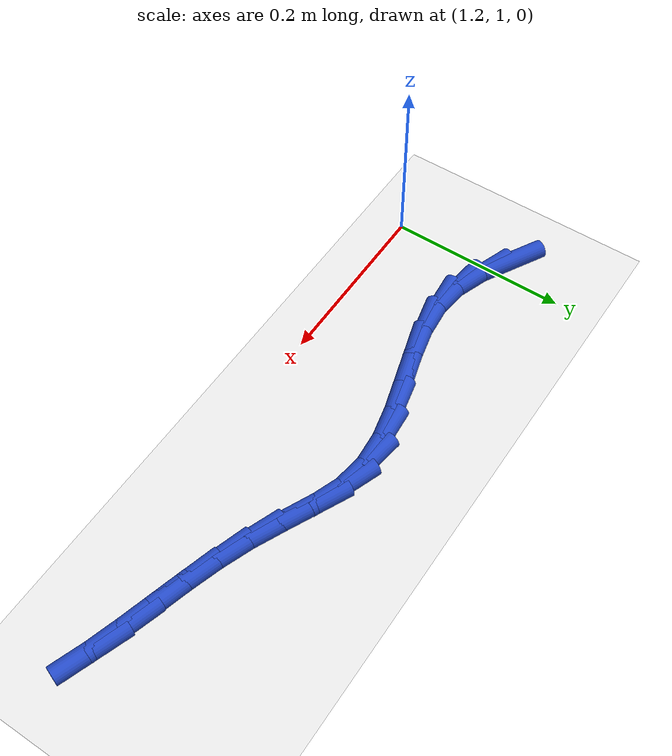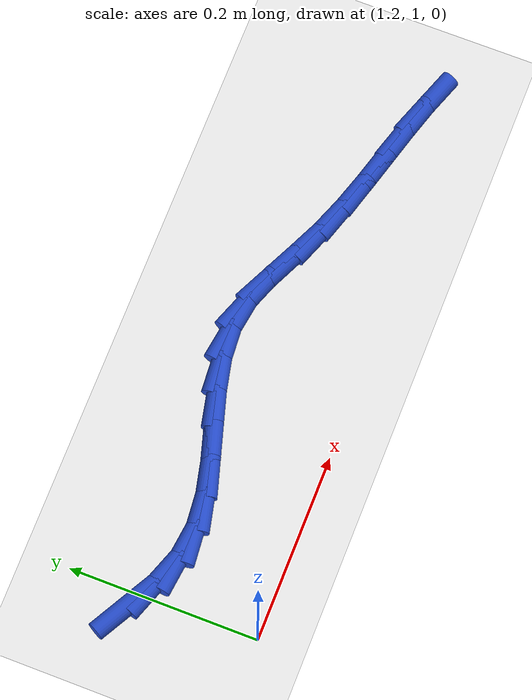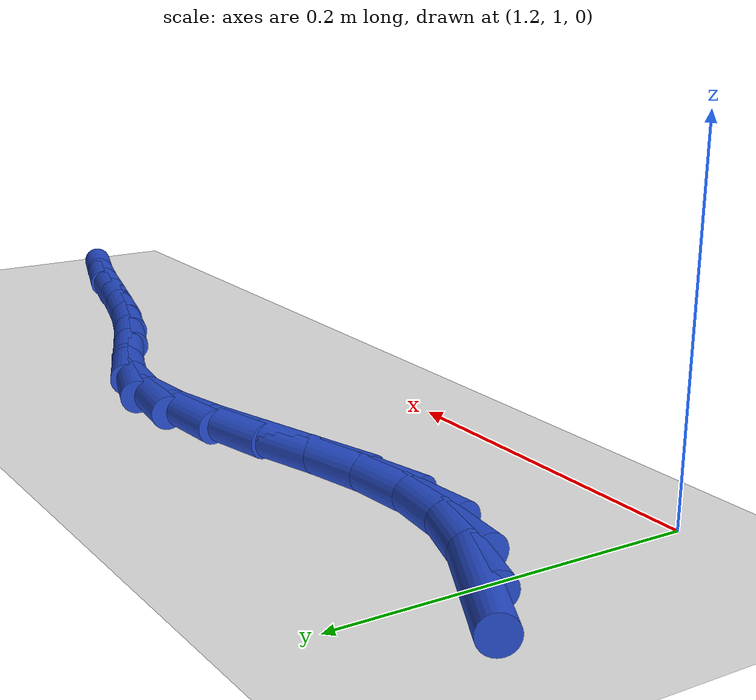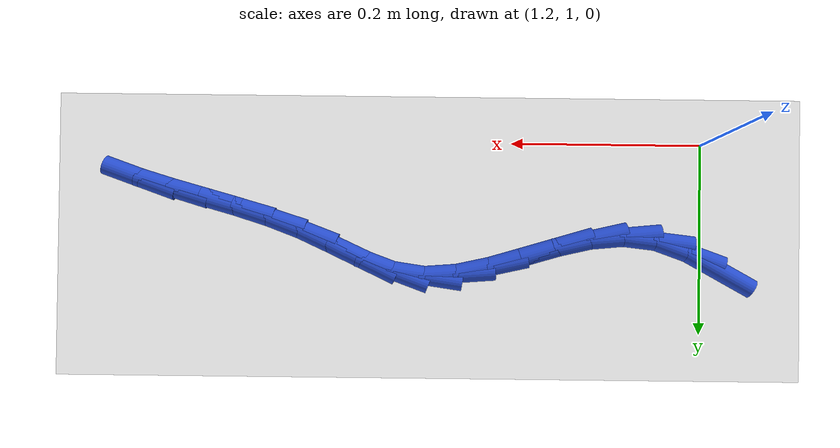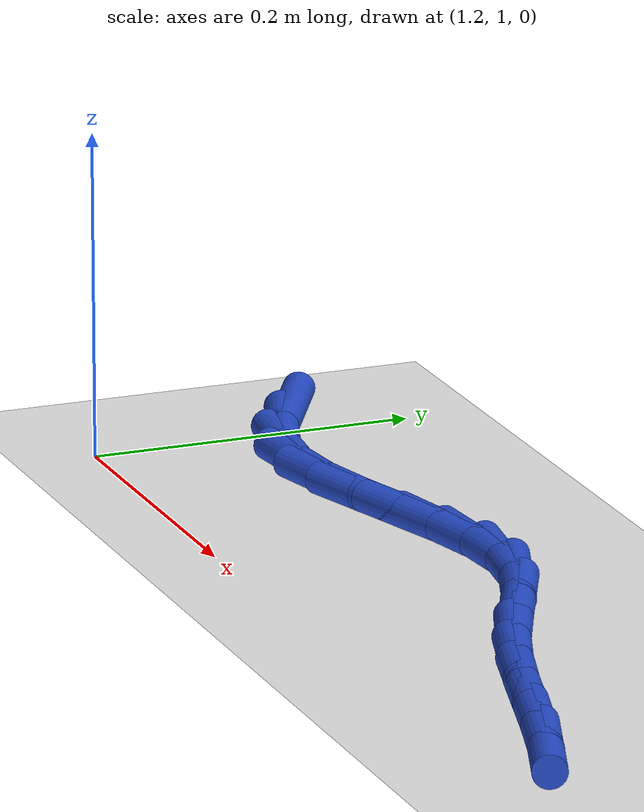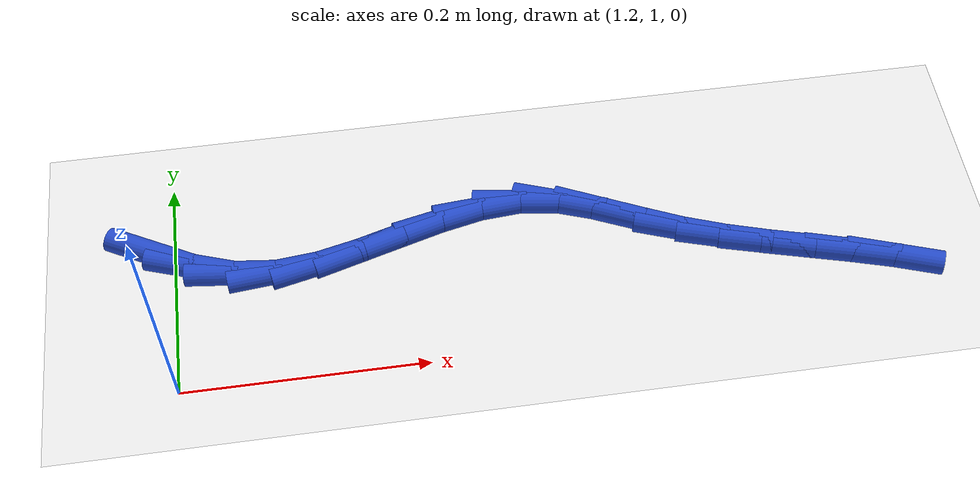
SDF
<sdf version="1.6">
 <world name="default">
  <model name="ground_plane">
   <static>1</static>
   <link name="link">
    <collision name="collision">
     <geometry><plane><normal>0 0 1</normal><size>100 100</size></plane></geometry>
     <surface><friction><ode><mu>100</mu><mu2>50</mu2></ode></friction></surface>
    </collision>
    <visual name="visual">
     <cast_shadows>0</cast_shadows>
     <geometry><plane><normal>0 0 1</normal><size>100 100</size></plane></geometry>
     <material>
      <script><uri>file://media/materials/scripts/gazebo.material</uri><name>Gazebo/WhiteGlow</name></script>
     </material>
    </visual>
   </link>
  </model>
  <model name="line">
   <link name="link_55">
    <pose>1.1828165090038496 1.1316689480585822 0.01 0 1.57 -0.5027347599885018</pose>
    <collision name="collision">
     <geometry><cylinder><radius>0.01</radius><length>0.08</length></cylinder></geometry>
    </collision>
    <visual name="visual">
     <material>
      <script><name>Gazebo/Blue</name><uri>file://media/materials/scripts/gazebo.material</uri></script>
     </material>
     <geometry><cylinder><radius>0.01</radius><length>0.08</length></cylinder></geometry>
    </visual>
   </link>
   <link name="link_56">
    <pose>1.2153828170130563 1.1137620786094786 0.01 0 1.57 -0.34139457595518125</pose>
    <collision name="collision">
     <geometry><cylinder><radius>0.01</radius><length>0.08</length></cylinder></geometry>
    </collision>
    <visual name="visual">
     <material>
      <script><name>Gazebo/Blue</name><uri>file://media/materials/scripts/gazebo.material</uri></script>
     </material>
     <geometry><cylinder><radius>0.01</radius><length>0.08</length></cylinder></geometry>
    </visual>
   </link>
   <link name="link_57">
    <pose>1.2486032644366645 1.101958629985786 0.01 0 1.57 -0.11395972814048469</pose>
    <collision name="collision">
     <geometry><cylinder><radius>0.01</radius><length>0.08</length></cylinder></geometry>
    </collision>
    <visual name="visual">
     <material>
      <script><name>Gazebo/Blue</name><uri>file://media/materials/scripts/gazebo.material</uri></script>
     </material>
     <geometry><cylinder><radius>0.01</radius><length>0.08</length></cylinder></geometry>
    </visual>
   </link>
   <link name="link_58">
    <pose>1.282534931967071 1.0980749596293777 0.01 0 1.57 0.09607817221247528</pose>
    <collision name="collision">
     <geometry><cylinder><radius>0.01</radius><length>0.08</length></cylinder></geometry>
    </collision>
    <visual name="visual">
     <material>
      <script><name>Gazebo/Blue</name><uri>file://media/materials/scripts/gazebo.material</uri></script>
     </material>
     <geometry><cylinder><radius>0.01</radius><length>0.08</length></cylinder></geometry>
    </visual>
   </link>
   <link name="link_59">
    <pose>1.3170576771930904 1.1014020857802107 0.01 0 1.57 0.22847469774608145</pose>
    <collision name="collision">
     <geometry><cylinder><radius>0.01</radius><length>0.08</length></cylinder></geometry>
    </collision>
    <visual name="visual">
     <material>
      <script><name>Gazebo/Blue</name><uri>file://media/materials/scripts/gazebo.material</uri></script>
     </material>
     <geometry><cylinder><radius>0.01</radius><length>0.08</length></cylinder></geometry>
    </visual>
   </link>
   <link name="link_60">
    <pose>1.351930669240402 1.1095112773847458 0.01 0 1.57 0.2897637995066804</pose>
    <collision name="collision">
     <geometry><cylinder><radius>0.01</radius><length>0.08</length></cylinder></geometry>
    </collision>
    <visual name="visual">
     <material>
      <script><name>Gazebo/Blue</name><uri>file://media/materials/scripts/gazebo.material</uri></script>
     </material>
     <geometry><cylinder><radius>0.01</radius><length>0.08</length></cylinder></geometry>
    </visual>
   </link>
   <link name="link_61">
    <pose>1.3869107601669473 1.119940786351168 0.01 0 1.57 0.28710321542571177</pose>
    <collision name="collision">
     <geometry><cylinder><radius>0.01</radius><length>0.08</length></cylinder></geometry>
    </collision>
    <visual name="visual">
     <material>
      <script><name>Gazebo/Blue</name><uri>file://media/materials/scripts/gazebo.material</uri></script>
     </material>
     <geometry><cylinder><radius>0.01</radius><length>0.08</length></cylinder></geometry>
    </visual>
   </link>
   <link name="link_62">
    <pose>1.4217548020306652 1.130228864587663 0.01 0 1.57 0.21938896591605</pose>
    <collision name="collision">
     <geometry><cylinder><radius>0.01</radius><length>0.08</length></cylinder></geometry>
    </collision>
    <visual name="visual">
     <material>
      <script><name>Gazebo/Blue</name><uri>file://media/materials/scripts/gazebo.material</uri></script>
     </material>
     <geometry><cylinder><radius>0.01</radius><length>0.08</length></cylinder></geometry>
    </visual>
   </link>
   <link name="link_63">
    <pose>1.4562196468894981 1.1379137640024177 0.01 0 1.57 0.07726252862373256</pose>
    <collision name="collision">
     <geometry><cylinder><radius>0.01</radius><length>0.08</length></cylinder></geometry>
    </collision>
    <visual name="visual">
     <material>
      <script><name>Gazebo/Blue</name><uri>file://media/materials/scripts/gazebo.material</uri></script>
     </material>
     <geometry><cylinder><radius>0.01</radius><length>0.08</length></cylinder></geometry>
    </visual>
   </link>
   <link name="link_64">
    <pose>1.4900621468013857 1.140533736503617 0.01 0 1.57 -0.14484840193356263</pose>
    <collision name="collision">
     <geometry><cylinder><radius>0.01</radius><length>0.08</length></cylinder></geometry>
    </collision>
    <visual name="visual">
     <material>
      <script><name>Gazebo/Blue</name><uri>file://media/materials/scripts/gazebo.material</uri></script>
     </material>
     <geometry><cylinder><radius>0.01</radius><length>0.08</length></cylinder></geometry>
    </visual>
   </link>
   <link name="link_65">
    <pose>1.5230517323239887 1.1357215456371488 0.01 0 1.57 -0.3514077244487403</pose>
    <collision name="collision">
     <geometry><cylinder><radius>0.01</radius><length>0.08</length></cylinder></geometry>
    </collision>
    <visual name="visual">
     <material>
      <script><name>Gazebo/Blue</name><uri>file://media/materials/scripts/gazebo.material</uri></script>
     </material>
     <geometry><cylinder><radius>0.01</radius><length>0.08</length></cylinder></geometry>
    </visual>
   </link>
   <link name="link_66">
    <pose>1.555327617244323 1.1238884117903467 0.01 0 1.57 -0.4440064988694887</pose>
    <collision name="collision">
     <geometry><cylinder><radius>0.01</radius><length>0.08</length></cylinder></geometry>
    </collision>
    <visual name="visual">
     <material>
      <script><name>Gazebo/Blue</name><uri>file://media/materials/scripts/gazebo.material</uri></script>
     </material>
     <geometry><cylinder><radius>0.01</radius><length>0.08</length></cylinder></geometry>
    </visual>
   </link>
   <link name="link_67">
    <pose>1.5874499465156224 1.1086083247400593 0.01 0 1.57 -0.43175485344814746</pose>
    <collision name="collision">
     <geometry><cylinder><radius>0.01</radius><length>0.08</length></cylinder></geometry>
    </collision>
    <visual name="visual">
     <material>
      <script><name>Gazebo/Blue</name><uri>file://media/materials/scripts/gazebo.material</uri></script>
     </material>
     <geometry><cylinder><radius>0.01</radius><length>0.08</length></cylinder></geometry>
    </visual>
   </link>
   <link name="link_68">
    <pose>1.6199987642933193 1.0936115645586553 0.01 0 1.57 -0.3595593047896718</pose>
    <collision name="collision">
     <geometry><cylinder><radius>0.01</radius><length>0.08</length></cylinder></geometry>
    </collision>
    <visual name="visual">
     <material>
      <script><name>Gazebo/Blue</name><uri>file://media/materials/scripts/gazebo.material</uri></script>
     </material>
     <geometry><cylinder><radius>0.01</radius><length>0.08</length></cylinder></geometry>
    </visual>
   </link>
   <link name="link_69">
    <pose>1.6532631805868956 1.0811074770422702 0.01 0 1.57 -0.3039631590371445</pose>
    <collision name="collision">
     <geometry><cylinder><radius>0.01</radius><length>0.08</length></cylinder></geometry>
    </collision>
    <visual name="visual">
     <material>
      <script><name>Gazebo/Blue</name><uri>file://media/materials/scripts/gazebo.material</uri></script>
     </material>
     <geometry><cylinder><radius>0.01</radius><length>0.08</length></cylinder></geometry>
    </visual>
   </link>
   <link name="link_70">
    <pose>1.6870003851848916 1.070524656028142 0.01 0 1.57 -0.2739551416541571</pose>
    <collision name="collision">
     <geometry><cylinder><radius>0.01</radius><length>0.08</length></cylinder></geometry>
    </collision>
    <visual name="visual">
     <material>
      <script><name>Gazebo/Blue</name><uri>file://media/materials/scripts/gazebo.material</uri></script>
     </material>
     <geometry><cylinder><radius>0.01</radius><length>0.08</length></cylinder></geometry>
    </visual>
   </link>
   <link name="link_71">
    <pose>1.7209108352063052 1.0609951104978321 0.01 0 1.57 -0.26984113333690357</pose>
    <collision name="collision">
     <geometry><cylinder><radius>0.01</radius><length>0.08</length></cylinder></geometry>
    </collision>
    <visual name="visual">
     <material>
      <script><name>Gazebo/Blue</name><uri>file://media/materials/scripts/gazebo.material</uri></script>
     </material>
     <geometry><cylinder><radius>0.01</radius><length>0.08</length></cylinder></geometry>
    </visual>
   </link>
   <link name="link_72">
    <pose>1.7546949877701359 1.0516508494329015 0.01 0 1.57 -0.2919922873287161</pose>
    <collision name="collision">
     <geometry><cylinder><radius>0.01</radius><length>0.08</length></cylinder></geometry>
    </collision>
    <visual name="visual">
     <material>
      <script><name>Gazebo/Blue</name><uri>file://media/materials/scripts/gazebo.material</uri></script>
     </material>
     <geometry><cylinder><radius>0.01</radius><length>0.08</length></cylinder></geometry>
    </visual>
   </link>
   <link name="link_73">
    <pose>1.7880532999953818 1.0416238818149108 0.01 0 1.57 -0.3409310172532891</pose>
    <collision name="collision">
     <geometry><cylinder><radius>0.01</radius><length>0.08</length></cylinder></geometry>
    </collision>
    <visual name="visual">
     <material>
      <script><name>Gazebo/Blue</name><uri>file://media/materials/scripts/gazebo.material</uri></script>
     </material>
     <geometry><cylinder><radius>0.01</radius><length>0.08</length></cylinder></geometry>
    </visual>
   </link>
  </model>
 </world>
</sdf>
